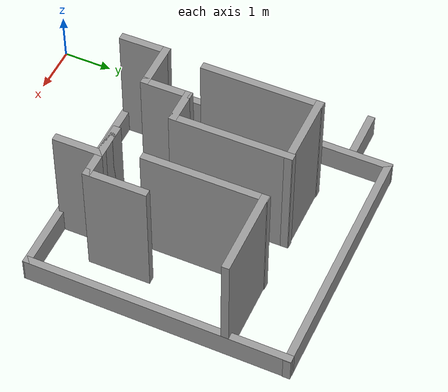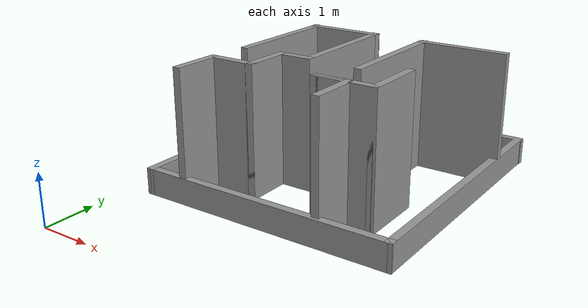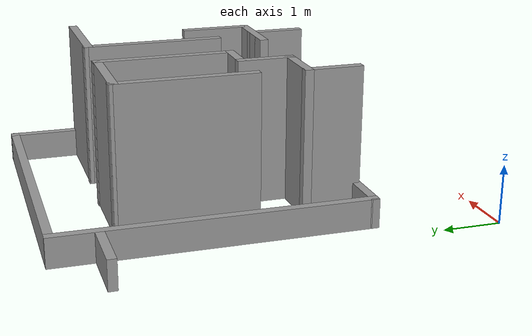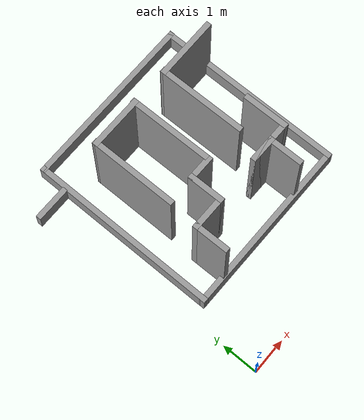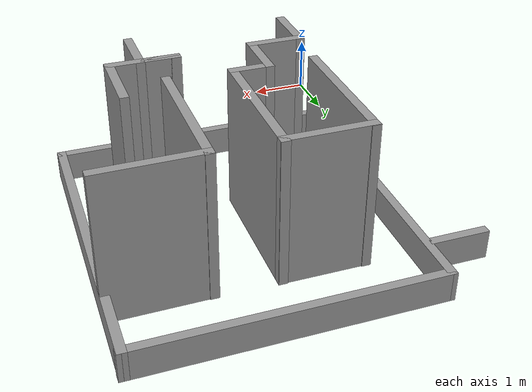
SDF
<?xml version='1.0'?>
<sdf version='1.7'>
  <model name='LoopMaze'>
    <pose>2.47296 3.63599 0 0 -0 0</pose>
    <link name='Wall_10'>
      <collision name='Wall_10_Collision'>
        <geometry>
          <box>
            <size>5.32261 0.15 0.5</size>
          </box>
        </geometry>
        <pose>0 0 0.25 0 -0 0</pose>
      </collision>
      <visual name='Wall_10_Visual'>
        <pose>0 0 0.25 0 -0 0</pose>
        <geometry>
          <box>
            <size>5.32261 0.15 0.5</size>
          </box>
        </geometry>
        <material>
          <script>
            <uri>file://media/materials/scripts/gazebo.material</uri>
            <name>Gazebo/Grey</name>
          </script>
          <ambient>1 1 1 1</ambient>
        </material>
        <meta>
          <layer>0</layer>
        </meta>
      </visual>
      <pose>-1.96735 0.971213 0 0 -0 -1.578</pose>
    </link>
    <link name='Wall_12'>
      <collision name='Wall_12_Collision'>
        <geometry>
          <box>
            <size>1 0.15 2.5</size>
          </box>
        </geometry>
        <pose>0 0 1.25 0 -0 0</pose>
      </collision>
      <visual name='Wall_12_Visual'>
        <pose>0 0 1.25 0 -0 0</pose>
        <geometry>
          <box>
            <size>1 0.15 2.5</size>
          </box>
        </geometry>
        <material>
          <script>
            <uri>file://media/materials/scripts/gazebo.material</uri>
            <name>Gazebo/Grey</name>
          </script>
          <ambient>1 1 1 1</ambient>
        </material>
        <meta>
          <layer>0</layer>
        </meta>
      </visual>
      <pose>1.54676 -1.12709 0 0 -0 1.5708</pose>
    </link>
    <link name='Wall_13'>
      <collision name='Wall_13_Collision'>
        <geometry>
          <box>
            <size>0.75 0.15 2.5</size>
          </box>
        </geometry>
        <pose>0 0 1.25 0 -0 0</pose>
      </collision>
      <visual name='Wall_13_Visual'>
        <pose>0 0 1.25 0 -0 0</pose>
        <geometry>
          <box>
            <size>0.75 0.15 2.5</size>
          </box>
        </geometry>
        <material>
          <script>
            <uri>file://media/materials/scripts/gazebo.material</uri>
            <name>Gazebo/Grey</name>
          </script>
          <ambient>1 1 1 1</ambient>
        </material>
        <meta>
          <layer>0</layer>
        </meta>
      </visual>
      <pose>1.24676 -0.702094 0 0 -0 3.14159</pose>
    </link>
    <link name='Wall_14'>
      <collision name='Wall_14_Collision'>
        <geometry>
          <box>
            <size>1.25 0.15 2.5</size>
          </box>
        </geometry>
        <pose>0 0 1.25 0 -0 0</pose>
      </collision>
      <visual name='Wall_14_Visual'>
        <pose>0 0 1.25 0 -0 0</pose>
        <geometry>
          <box>
            <size>1.25 0.15 2.5</size>
          </box>
        </geometry>
        <material>
          <script>
            <uri>file://media/materials/scripts/gazebo.material</uri>
            <name>Gazebo/Grey</name>
          </script>
          <ambient>1 1 1 1</ambient>
        </material>
        <meta>
          <layer>0</layer>
        </meta>
      </visual>
      <pose>1.49676 -0.702094 0 0 -0 0</pose>
    </link>
    <link name='Wall_15'>
      <collision name='Wall_15_Collision'>
        <geometry>
          <box>
            <size>1.25 0.15 2.5</size>
          </box>
        </geometry>
        <pose>0 0 1.25 0 -0 0</pose>
      </collision>
      <visual name='Wall_15_Visual'>
        <pose>0 0 1.25 0 -0 0</pose>
        <geometry>
          <box>
            <size>1.25 0.15 2.5</size>
          </box>
        </geometry>
        <material>
          <script>
            <uri>file://media/materials/scripts/gazebo.material</uri>
            <name>Gazebo/Grey</name>
          </script>
          <ambient>1 1 1 1</ambient>
        </material>
        <meta>
          <layer>0</layer>
        </meta>
      </visual>
      <pose>2.04676 -0.152094 0 0 -0 1.5708</pose>
    </link>
    <link name='Wall_18'>
      <collision name='Wall_18_Collision'>
        <geometry>
          <box>
            <size>1.75304 0.15 2.5</size>
          </box>
        </geometry>
        <pose>0 0 1.25 0 -0 0</pose>
      </collision>
      <visual name='Wall_18_Visual'>
        <pose>0 0 1.25 0 -0 0</pose>
        <geometry>
          <box>
            <size>1.75304 0.15 2.5</size>
          </box>
        </geometry>
        <material>
          <script>
            <uri>file://media/materials/scripts/gazebo.material</uri>
            <name>Gazebo/Grey</name>
          </script>
          <ambient>1 1 1 1</ambient>
        </material>
        <meta>
          <layer>0</layer>
        </meta>
      </visual>
      <pose>2.10597 2.35621 0 0 -0 -3.13442</pose>
    </link>
    <link name='Wall_19'>
      <collision name='Wall_19_Collision'>
        <geometry>
          <box>
            <size>2.45627 0.15 2.5</size>
          </box>
        </geometry>
        <pose>0 0 1.25 0 -0 0</pose>
      </collision>
      <visual name='Wall_19_Visual'>
        <pose>0 0 1.25 0 -0 0</pose>
        <geometry>
          <box>
            <size>2.45627 0.15 2.5</size>
          </box>
        </geometry>
        <material>
          <script>
            <uri>file://media/materials/scripts/gazebo.material</uri>
            <name>Gazebo/Grey</name>
          </script>
          <ambient>1 1 1 1</ambient>
        </material>
        <meta>
          <layer>0</layer>
        </meta>
      </visual>
      <pose>1.30261 1.21254 0 0 -0 -1.5724</pose>
    </link>
    <link name='Wall_21'>
      <collision name='Wall_21_Collision'>
        <geometry>
          <box>
            <size>1 0.15 2.5</size>
          </box>
        </geometry>
        <pose>0 0 1.25 0 -0 0</pose>
      </collision>
      <visual name='Wall_21_Visual'>
        <pose>0 0 1.25 0 -0 0</pose>
        <geometry>
          <box>
            <size>1 0.15 2.5</size>
          </box>
        </geometry>
        <material>
          <script>
            <uri>file://media/materials/scripts/gazebo.material</uri>
            <name>Gazebo/Grey</name>
          </script>
          <ambient>1 1 1 1</ambient>
        </material>
        <meta>
          <layer>0</layer>
        </meta>
      </visual>
      <pose>-1.21324 -1.16159 0 0 -0 1.5708</pose>
    </link>
    <link name='Wall_22'>
      <collision name='Wall_22_Collision'>
        <geometry>
          <box>
            <size>1 0.15 2.5</size>
          </box>
        </geometry>
        <pose>0 0 1.25 0 -0 0</pose>
      </collision>
      <visual name='Wall_22_Visual'>
        <pose>0 0 1.25 0 -0 0</pose>
        <geometry>
          <box>
            <size>1 0.15 2.5</size>
          </box>
        </geometry>
        <material>
          <script>
            <uri>file://media/materials/scripts/gazebo.material</uri>
            <name>Gazebo/Grey</name>
          </script>
          <ambient>1 1 1 1</ambient>
        </material>
        <meta>
          <layer>0</layer>
        </meta>
      </visual>
      <pose>-0.788243 -0.736594 0 0 -0 0</pose>
    </link>
    <link name='Wall_23'>
      <collision name='Wall_23_Collision'>
        <geometry>
          <box>
            <size>1 0.15 2.5</size>
          </box>
        </geometry>
        <pose>0 0 1.25 0 -0 0</pose>
      </collision>
      <visual name='Wall_23_Visual'>
        <pose>0 0 1.25 0 -0 0</pose>
        <geometry>
          <box>
            <size>1 0.15 2.5</size>
          </box>
        </geometry>
        <material>
          <script>
            <uri>file://media/materials/scripts/gazebo.material</uri>
            <name>Gazebo/Grey</name>
          </script>
          <ambient>1 1 1 1</ambient>
        </material>
        <meta>
          <layer>0</layer>
        </meta>
      </visual>
      <pose>-0.363243 -0.311594 0 0 -0 1.5708</pose>
    </link>
    <link name='Wall_24'>
      <collision name='Wall_24_Collision'>
        <geometry>
          <box>
            <size>0.75 0.15 2.5</size>
          </box>
        </geometry>
        <pose>0 0 1.25 0 -0 0</pose>
      </collision>
      <visual name='Wall_24_Visual'>
        <pose>0 0 1.25 0 -0 0</pose>
        <geometry>
          <box>
            <size>0.75 0.15 2.5</size>
          </box>
        </geometry>
        <material>
          <script>
            <uri>file://media/materials/scripts/gazebo.material</uri>
            <name>Gazebo/Grey</name>
          </script>
          <ambient>1 1 1 1</ambient>
        </material>
        <meta>
          <layer>0</layer>
        </meta>
      </visual>
      <pose>-0.063243 0.113405 0 0 -0 0</pose>
    </link>
    <link name='Wall_25'>
      <collision name='Wall_25_Collision'>
        <geometry>
          <box>
            <size>2.42584 0.15 2.5</size>
          </box>
        </geometry>
        <pose>0 0 1.25 0 -0 0</pose>
      </collision>
      <visual name='Wall_25_Visual'>
        <pose>0 0 1.25 0 -0 0</pose>
        <geometry>
          <box>
            <size>2.42584 0.15 2.5</size>
          </box>
        </geometry>
        <material>
          <script>
            <uri>file://media/materials/scripts/gazebo.material</uri>
            <name>Gazebo/Grey</name>
          </script>
          <ambient>1 1 1 1</ambient>
        </material>
        <meta>
          <layer>0</layer>
        </meta>
      </visual>
      <pose>0.236757 1.25133 0 0 -0 1.5708</pose>
    </link>
    <link name='Wall_26'>
      <collision name='Wall_26_Collision'>
        <geometry>
          <box>
            <size>1.52 0.15 2.5</size>
          </box>
        </geometry>
        <pose>0 0 1.25 0 -0 0</pose>
      </collision>
      <visual name='Wall_26_Visual'>
        <pose>0 0 1.25 0 -0 0</pose>
        <geometry>
          <box>
            <size>1.52 0.15 2.5</size>
          </box>
        </geometry>
        <material>
          <script>
            <uri>file://media/materials/scripts/gazebo.material</uri>
            <name>Gazebo/Grey</name>
          </script>
          <ambient>1 1 1 1</ambient>
        </material>
        <meta>
          <layer>0</layer>
        </meta>
      </visual>
      <pose>-0.448243 2.37404 0 0 -0 3.14159</pose>
    </link>
    <link name='Wall_27'>
      <collision name='Wall_27_Collision'>
        <geometry>
          <box>
            <size>2.42587 0.15 2.5</size>
          </box>
        </geometry>
        <pose>0 0 1.25 0 -0 0</pose>
      </collision>
      <visual name='Wall_27_Visual'>
        <pose>0 0 1.25 0 -0 0</pose>
        <geometry>
          <box>
            <size>2.42587 0.15 2.5</size>
          </box>
        </geometry>
        <material>
          <script>
            <uri>file://media/materials/scripts/gazebo.material</uri>
            <name>Gazebo/Grey</name>
          </script>
          <ambient>1 1 1 1</ambient>
        </material>
        <meta>
          <layer>0</layer>
        </meta>
      </visual>
      <pose>-1.13899 1.25133 0 0 -0 -1.57585</pose>
    </link>
    <link name='Wall_29'>
      <collision name='Wall_29_Collision'>
        <geometry>
          <box>
            <size>1 0.15 0.5</size>
          </box>
        </geometry>
        <pose>0 0 0.25 0 -0 0</pose>
      </collision>
      <visual name='Wall_29_Visual'>
        <pose>0 0 0.25 0 -0 0</pose>
        <geometry>
          <box>
            <size>1 0.15 0.5</size>
          </box>
        </geometry>
        <material>
          <script>
            <uri>file://media/materials/scripts/gazebo.material</uri>
            <name>Gazebo/Grey</name>
          </script>
          <ambient>1 1 1 1</ambient>
        </material>
        <meta>
          <layer>0</layer>
        </meta>
      </visual>
      <pose>-2.50196 2.81101 0 0 -0 3.14159</pose>
    </link>
    <link name='Wall_5'>
      <collision name='Wall_5_Collision'>
        <geometry>
          <box>
            <size>5.01622 0.15 0.5</size>
          </box>
        </geometry>
        <pose>0 0 0.25 0 -0 0</pose>
      </collision>
      <visual name='Wall_5_Visual'>
        <pose>0 0 0.25 0 -0 0</pose>
        <geometry>
          <box>
            <size>5.01622 0.15 0.5</size>
          </box>
        </geometry>
        <material>
          <script>
            <uri>file://media/materials/scripts/gazebo.material</uri>
            <name>Gazebo/Grey</name>
          </script>
          <ambient>1 1 1 1</ambient>
        </material>
        <meta>
          <layer>0</layer>
        </meta>
      </visual>
      <pose>0.447537 -1.61349 0 0 -0 0.000616</pose>
    </link>
    <link name='Wall_8'>
      <collision name='Wall_8_Collision'>
        <geometry>
          <box>
            <size>5.32261 0.15 0.5</size>
          </box>
        </geometry>
        <pose>0 0 0.25 0 -0 0</pose>
      </collision>
      <visual name='Wall_8_Visual'>
        <pose>0 0 0.25 0 -0 0</pose>
        <geometry>
          <box>
            <size>5.32261 0.15 0.5</size>
          </box>
        </geometry>
        <material>
          <script>
            <uri>file://media/materials/scripts/gazebo.material</uri>
            <name>Gazebo/Grey</name>
          </script>
          <ambient>1 1 1 1</ambient>
        </material>
        <meta>
          <layer>0</layer>
        </meta>
      </visual>
      <pose>2.89965 0.974214 0 0 -0 1.5636</pose>
    </link>
    <link name='Wall_9'>
      <collision name='Wall_9_Collision'>
        <geometry>
          <box>
            <size>5.017 0.15 0.5</size>
          </box>
        </geometry>
        <pose>0 0 0.25 0 -0 0</pose>
      </collision>
      <visual name='Wall_9_Visual'>
        <pose>0 0 0.25 0 -0 0</pose>
        <geometry>
          <box>
            <size>5.017 0.15 0.5</size>
          </box>
        </geometry>
        <material>
          <script>
            <uri>file://media/materials/scripts/gazebo.material</uri>
            <name>Gazebo/Grey</name>
          </script>
          <ambient>1 1 1 1</ambient>
        </material>
        <meta>
          <layer>0</layer>
        </meta>
      </visual>
      <pose>0.493417 3.55892 0 0 -0 -3.14098</pose>
    </link>
    <static>1</static>
  </model>
</sdf>
